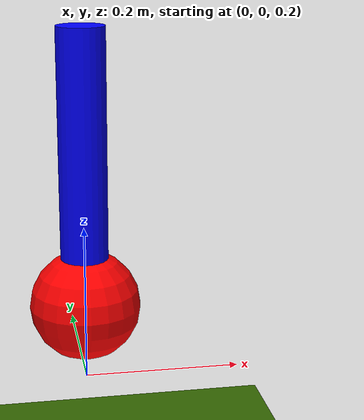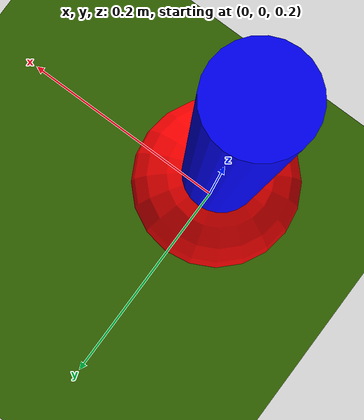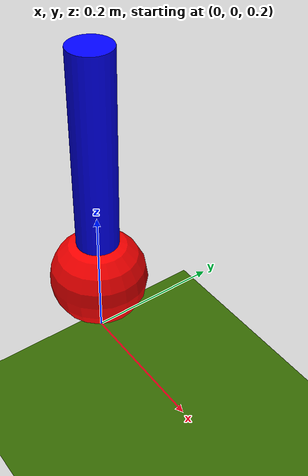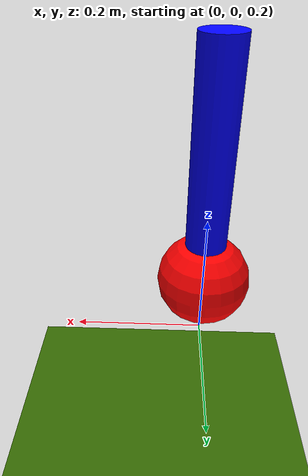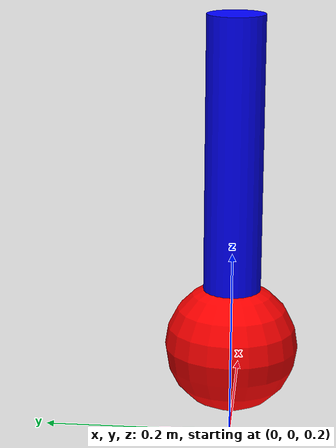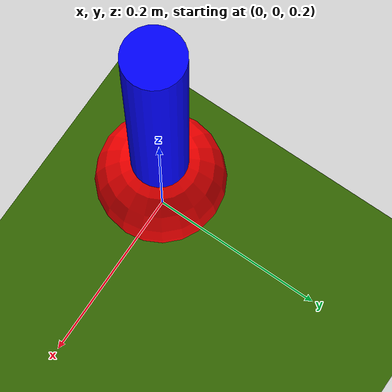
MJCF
<mujoco>
    <worldbody>
        <light diffuse="0.4 0.4 0.4" specular="0.2 0.2 0.2" pos="0 0 4" dir="0 0 -1" />
        <geom type="plane" size="1 1 0.1" rgba="0.2 0.4 0 1" />
        <body pos="0 0 0.3">
            <geom type="sphere" size="0.07" rgba="1 0 0 1" />
            <joint name="ball_jnt" type="ball"  stiffness="10"/>
            <body>
                <geom type="cylinder" size="0.03 0.15" rgba="0 0 1 1" pos="0 0 0.2" />
            </body>
        </body>
    </worldbody>
    <actuator>
        <motor name="ball_act" gear="40"  joint="ball_jnt"/>
    </actuator>
</mujoco>
